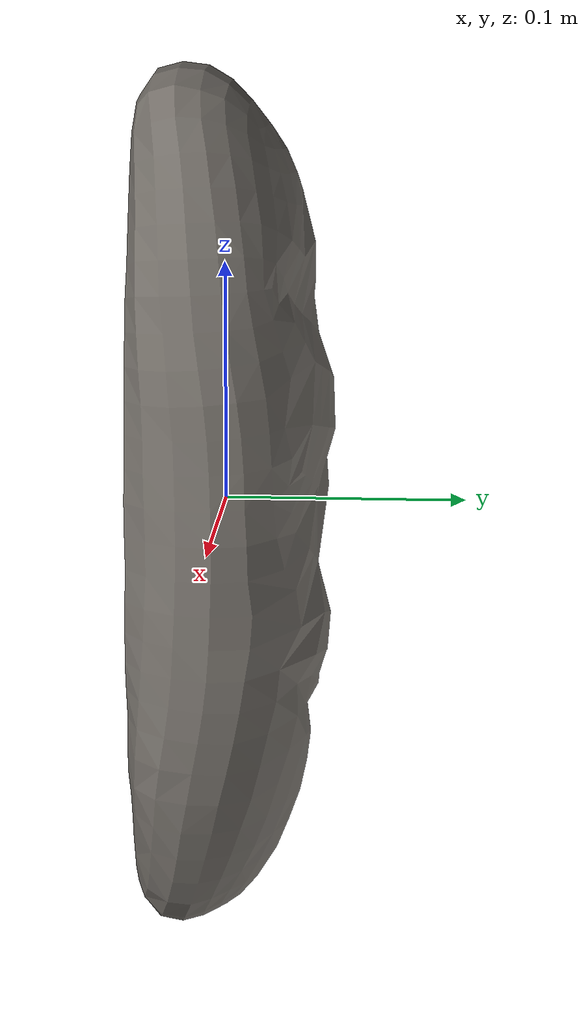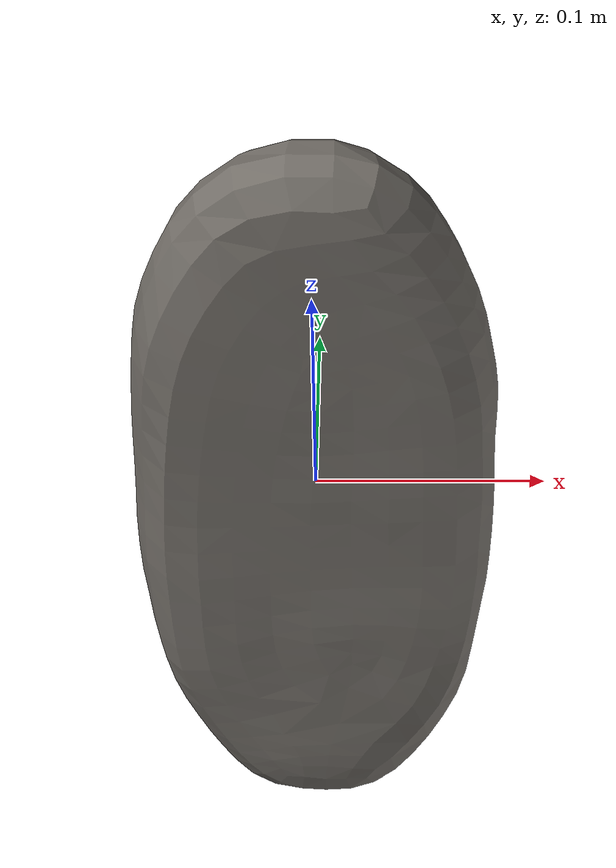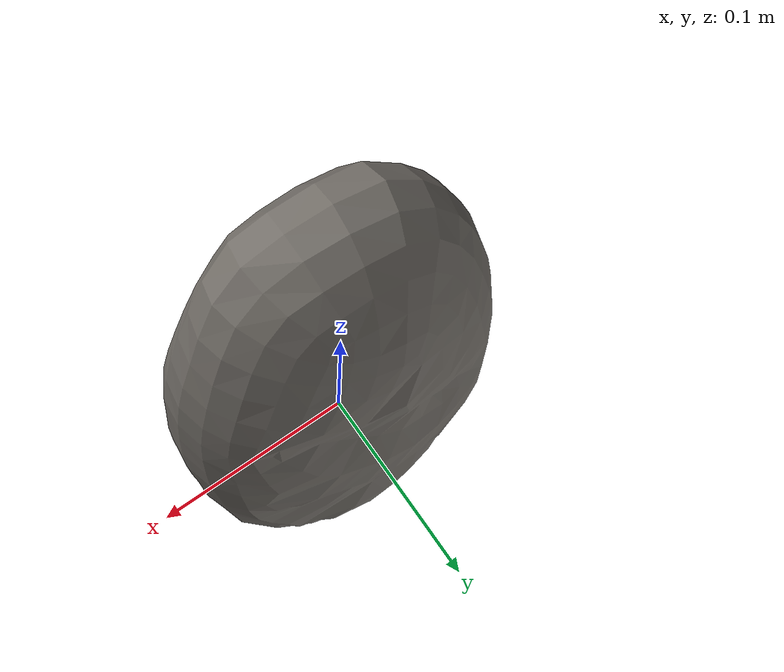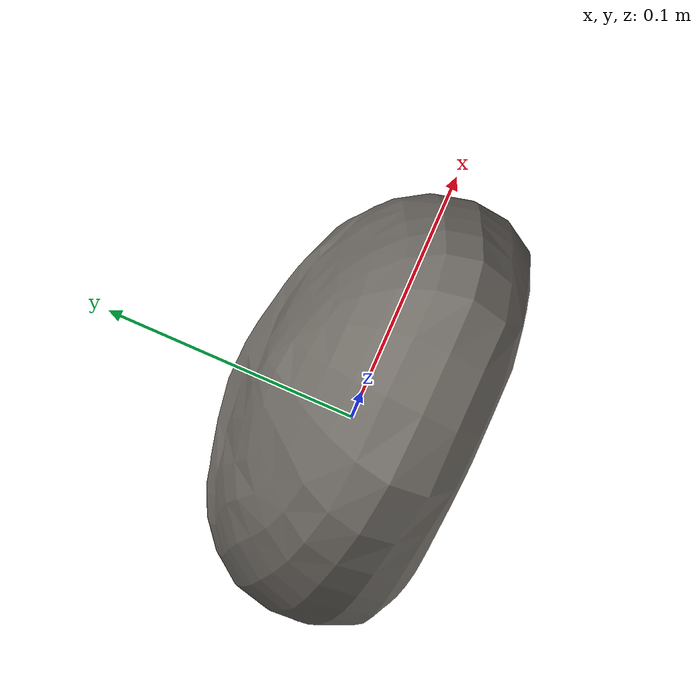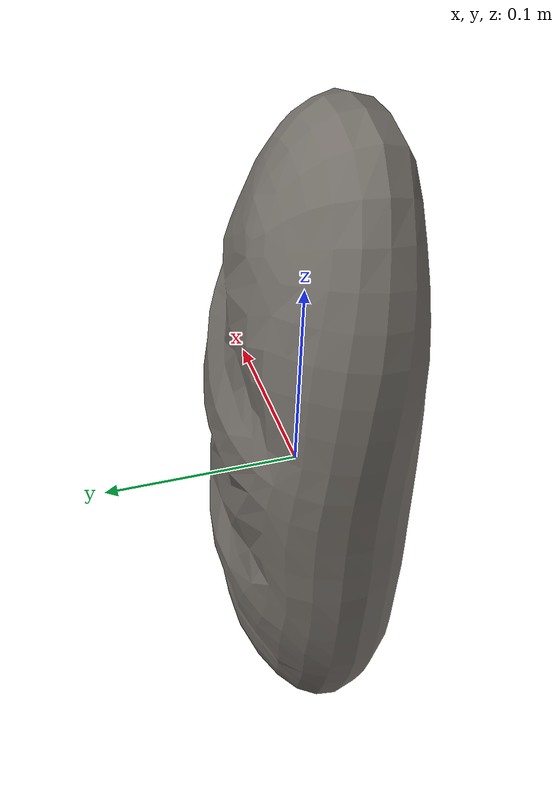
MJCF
<mujoco model="Bread_19">
  <compiler autolimits="true" boundmass="0.01" angle="radian"/>
  <default>
    <default class="/">
      <default class="__VISUAL_MJT__">
        <geom contype="0" conaffinity="0" group="0"/>
      </default>
      <default class="__STRUCTURAL_MJT__">
        <geom contype="8" conaffinity="15" group="4" friction="0.90000000000000002 0.90000000000000002 0.001" solref="0.025000000000000001 1" solimp="0.998 0.998 0.001"/>
      </default>
      <default class="__DYNAMIC_MJT__">
        <geom contype="1" conaffinity="15" group="4" friction="0.90000000000000002 0.90000000000000002 0.001" solref="0.025000000000000001 1" solimp="0.998 0.998 0.001"/>
      </default>
    </default>
  </default>
  <asset>
    <texture name="GrainBread_Mat1" type="2d" file="GrainBread_AlbedoTransparency.png"/>
    <material name="material_GrainBread_Mat1" class="/" texture="GrainBread_Mat1" specular="0.5" shininess="0.5" rgba="0.59558820000000001 0.59558820000000001 0.59558820000000001 1"/>
    <mesh name="Bread_19_grainbread_a_mesh" class="/" file="Bread_19_grainbread_a_mesh/Bread_19_grainbread_a_mesh.obj" scale="1 1 1"/>
  </asset>
  <worldbody>
    <body name="Bread_19">
      <joint name="Bread_19_free" class="/" type="free" pos="0 0 0" axis="0 0 1" stiffness="0" range="0 0" armature="0" damping="0.10000000000000001" frictionloss="0"/>
      <body name="Bread_19_grainbread_a_mesh" pos="-0 0.0034099999999999998 0" quat="1 0 0 0">
        <geom name="Bread_19_grainbread_a_mesh" class="__VISUAL_MJT__" type="mesh" material="material_GrainBread_Mat1" shellinertia="false" mesh="Bread_19_grainbread_a_mesh"/>
        <geom name="Bread_19_PrimitiveCollider_0" class="__DYNAMIC_MJT__" type="capsule" size="0.038926124572753906 0.15208315849304199" rgba="0 1 0 1" pos="-0 -0.0051220059394836426 -1.4901161193847656e-08" quat="0.99999999999891198 1.4751396607739272e-06 0 0"/>
        <geom name="Bread_19_PrimitiveCollider_1" class="__DYNAMIC_MJT__" type="box" size="0.078064307570457458 0.040815353393554688 0.11505968123674393" rgba="0 1 0 1" pos="-0 -0.00331868976354599 0" quat="1 0 0 0"/>
        <geom name="Bread_19_PrimitiveCollider_2" class="__DYNAMIC_MJT__" type="box" size="0.064637862145900726 0.035835951566696167 0.14706014096736908" rgba="0 1 0 1" pos="-0 -0.0084870476275682449 0" quat="1 0 0 0"/>
      </body>
    </body>
  </worldbody>
</mujoco>
